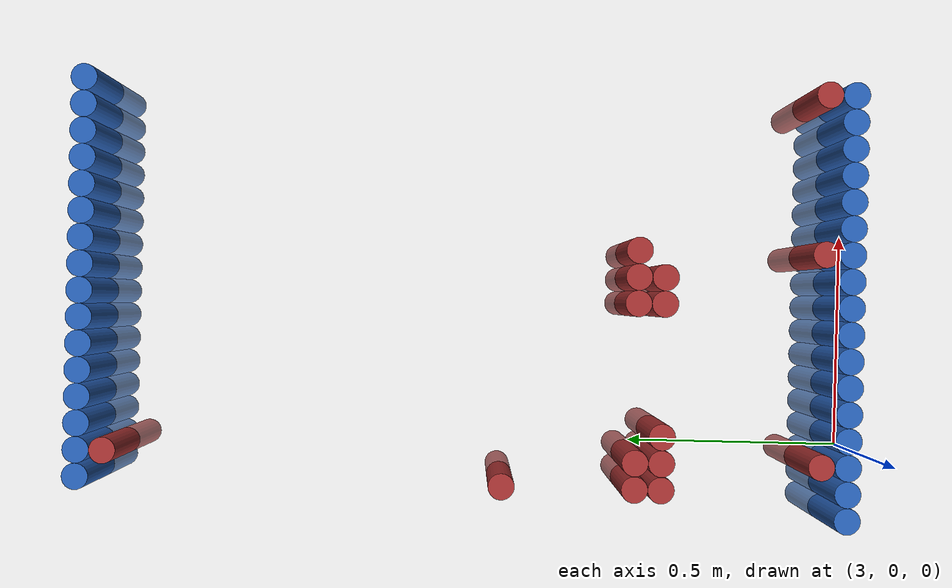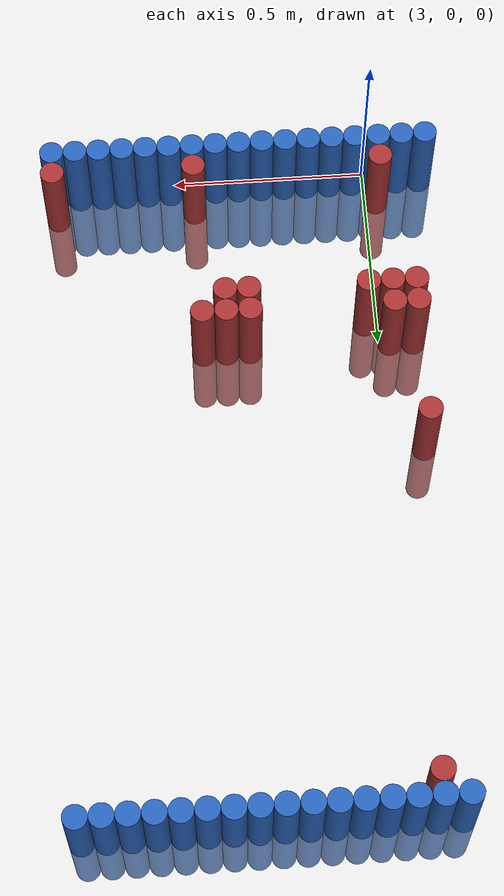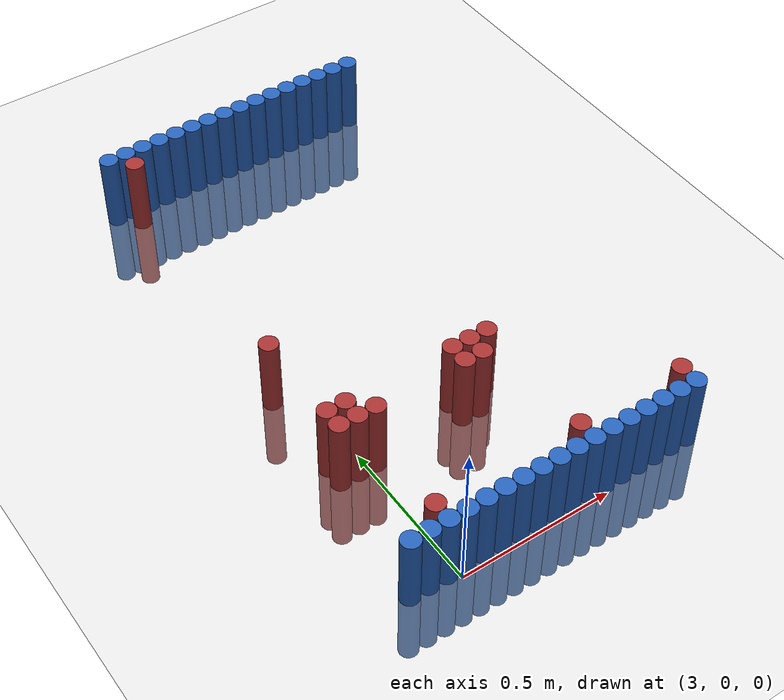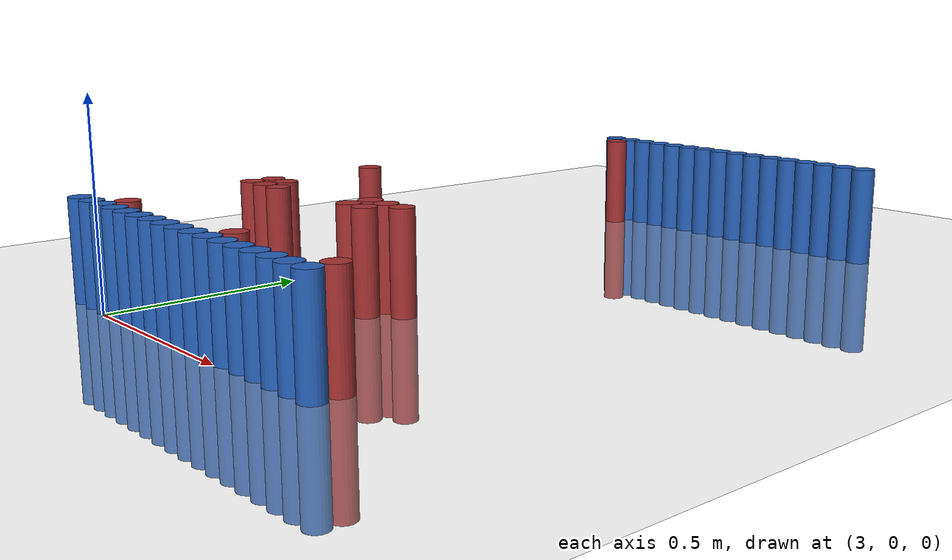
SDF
<sdf version="1.6">
 <world name="default">
  <model name="ground_plane">
   <static>1</static>
   <link name="link">
    <collision name="collision">
     <geometry><plane><normal>0 0 1</normal><size>100 100</size></plane></geometry>
     <surface><friction><ode><mu>100</mu><mu2>50</mu2></ode></friction></surface>
    </collision>
    <visual name="visual">
     <cast_shadows>0</cast_shadows>
     <geometry><plane><normal>0 0 1</normal><size>100 100</size></plane></geometry>
     <material>
      <script><uri>file://media/materials/scripts/gazebo.material</uri><name>Gazebo/Grey</name></script>
     </material>
    </visual>
   </link>
  </model>
  <model name="unit_cylinder_109">
   <static>1</static>
   <pose>2.910000 1.770000 0.000000 0.000000 0.000000 0.000000</pose>
   <link name="link">
    <inertial>
     <mass>1</mass>
     <inertia><ixx>0.145833</ixx><ixy>0</ixy><ixz>0</ixz><iyy>0.145833</iyy><iyz>0</iyz><izz>0.125</izz></inertia>
    </inertial>
    <collision name="collision">
     <geometry><cylinder><radius>0.030000</radius><length>0.5</length></cylinder></geometry>
    </collision>
    <visual name="visual">
     <geometry><cylinder><radius>0.030000</radius><length>0.5</length></cylinder></geometry>
     <material>
      <ambient>0.152000 0.379000 0.720000 1</ambient>
      <diffuse>0.152000 0.379000 0.720000 1</diffuse>
     </material>
     <material>
      <script><name>Gazebo/Grey</name><uri>file://media/materials/scripts/gazebo.material</uri></script>
     </material>
    </visual>
   </link>
  </model>
  <model name="unit_cylinder_110">
   <static>1</static>
   <pose>2.970000 1.770000 0.000000 0.000000 0.000000 0.000000</pose>
   <link name="link">
    <inertial>
     <mass>1</mass>
     <inertia><ixx>0.145833</ixx><ixy>0</ixy><ixz>0</ixz><iyy>0.145833</iyy><iyz>0</iyz><izz>0.125</izz></inertia>
    </inertial>
    <collision name="collision">
     <geometry><cylinder><radius>0.030000</radius><length>0.5</length></cylinder></geometry>
    </collision>
    <visual name="visual">
     <geometry><cylinder><radius>0.030000</radius><length>0.5</length></cylinder></geometry>
     <material>
      <ambient>0.152000 0.379000 0.720000 1</ambient>
      <diffuse>0.152000 0.379000 0.720000 1</diffuse>
     </material>
     <material>
      <script><name>Gazebo/Grey</name><uri>file://media/materials/scripts/gazebo.material</uri></script>
     </material>
    </visual>
   </link>
  </model>
  <model name="unit_cylinder_111">
   <static>1</static>
   <pose>3.030000 1.770000 0.000000 0.000000 0.000000 0.000000</pose>
   <link name="link">
    <inertial>
     <mass>1</mass>
     <inertia><ixx>0.145833</ixx><ixy>0</ixy><ixz>0</ixz><iyy>0.145833</iyy><iyz>0</iyz><izz>0.125</izz></inertia>
    </inertial>
    <collision name="collision">
     <geometry><cylinder><radius>0.030000</radius><length>0.5</length></cylinder></geometry>
    </collision>
    <visual name="visual">
     <geometry><cylinder><radius>0.030000</radius><length>0.5</length></cylinder></geometry>
     <material>
      <ambient>0.152000 0.379000 0.720000 1</ambient>
      <diffuse>0.152000 0.379000 0.720000 1</diffuse>
     </material>
     <material>
      <script><name>Gazebo/Grey</name><uri>file://media/materials/scripts/gazebo.material</uri></script>
     </material>
    </visual>
   </link>
  </model>
  <model name="unit_cylinder_112">
   <static>1</static>
   <pose>3.090000 1.770000 0.000000 0.000000 0.000000 0.000000</pose>
   <link name="link">
    <inertial>
     <mass>1</mass>
     <inertia><ixx>0.145833</ixx><ixy>0</ixy><ixz>0</ixz><iyy>0.145833</iyy><iyz>0</iyz><izz>0.125</izz></inertia>
    </inertial>
    <collision name="collision">
     <geometry><cylinder><radius>0.030000</radius><length>0.5</length></cylinder></geometry>
    </collision>
    <visual name="visual">
     <geometry><cylinder><radius>0.030000</radius><length>0.5</length></cylinder></geometry>
     <material>
      <ambient>0.152000 0.379000 0.720000 1</ambient>
      <diffuse>0.152000 0.379000 0.720000 1</diffuse>
     </material>
     <material>
      <script><name>Gazebo/Grey</name><uri>file://media/materials/scripts/gazebo.material</uri></script>
     </material>
    </visual>
   </link>
  </model>
  <model name="unit_cylinder_113">
   <static>1</static>
   <pose>3.150000 1.770000 0.000000 0.000000 0.000000 0.000000</pose>
   <link name="link">
    <inertial>
     <mass>1</mass>
     <inertia><ixx>0.145833</ixx><ixy>0</ixy><ixz>0</ixz><iyy>0.145833</iyy><iyz>0</iyz><izz>0.125</izz></inertia>
    </inertial>
    <collision name="collision">
     <geometry><cylinder><radius>0.030000</radius><length>0.5</length></cylinder></geometry>
    </collision>
    <visual name="visual">
     <geometry><cylinder><radius>0.030000</radius><length>0.5</length></cylinder></geometry>
     <material>
      <ambient>0.152000 0.379000 0.720000 1</ambient>
      <diffuse>0.152000 0.379000 0.720000 1</diffuse>
     </material>
     <material>
      <script><name>Gazebo/Grey</name><uri>file://media/materials/scripts/gazebo.material</uri></script>
     </material>
    </visual>
   </link>
  </model>
  <model name="unit_cylinder_114">
   <static>1</static>
   <pose>3.210000 1.770000 0.000000 0.000000 0.000000 0.000000</pose>
   <link name="link">
    <inertial>
     <mass>1</mass>
     <inertia><ixx>0.145833</ixx><ixy>0</ixy><ixz>0</ixz><iyy>0.145833</iyy><iyz>0</iyz><izz>0.125</izz></inertia>
    </inertial>
    <collision name="collision">
     <geometry><cylinder><radius>0.030000</radius><length>0.5</length></cylinder></geometry>
    </collision>
    <visual name="visual">
     <geometry><cylinder><radius>0.030000</radius><length>0.5</length></cylinder></geometry>
     <material>
      <ambient>0.152000 0.379000 0.720000 1</ambient>
      <diffuse>0.152000 0.379000 0.720000 1</diffuse>
     </material>
     <material>
      <script><name>Gazebo/Grey</name><uri>file://media/materials/scripts/gazebo.material</uri></script>
     </material>
    </visual>
   </link>
  </model>
  <model name="unit_cylinder_115">
   <static>1</static>
   <pose>3.270000 1.770000 0.000000 0.000000 0.000000 0.000000</pose>
   <link name="link">
    <inertial>
     <mass>1</mass>
     <inertia><ixx>0.145833</ixx><ixy>0</ixy><ixz>0</ixz><iyy>0.145833</iyy><iyz>0</iyz><izz>0.125</izz></inertia>
    </inertial>
    <collision name="collision">
     <geometry><cylinder><radius>0.030000</radius><length>0.5</length></cylinder></geometry>
    </collision>
    <visual name="visual">
     <geometry><cylinder><radius>0.030000</radius><length>0.5</length></cylinder></geometry>
     <material>
      <ambient>0.152000 0.379000 0.720000 1</ambient>
      <diffuse>0.152000 0.379000 0.720000 1</diffuse>
     </material>
     <material>
      <script><name>Gazebo/Grey</name><uri>file://media/materials/scripts/gazebo.material</uri></script>
     </material>
    </visual>
   </link>
  </model>
  <model name="unit_cylinder_116">
   <static>1</static>
   <pose>3.330000 1.770000 0.000000 0.000000 0.000000 0.000000</pose>
   <link name="link">
    <inertial>
     <mass>1</mass>
     <inertia><ixx>0.145833</ixx><ixy>0</ixy><ixz>0</ixz><iyy>0.145833</iyy><iyz>0</iyz><izz>0.125</izz></inertia>
    </inertial>
    <collision name="collision">
     <geometry><cylinder><radius>0.030000</radius><length>0.5</length></cylinder></geometry>
    </collision>
    <visual name="visual">
     <geometry><cylinder><radius>0.030000</radius><length>0.5</length></cylinder></geometry>
     <material>
      <ambient>0.152000 0.379000 0.720000 1</ambient>
      <diffuse>0.152000 0.379000 0.720000 1</diffuse>
     </material>
     <material>
      <script><name>Gazebo/Grey</name><uri>file://media/materials/scripts/gazebo.material</uri></script>
     </material>
    </visual>
   </link>
  </model>
  <model name="unit_cylinder_117">
   <static>1</static>
   <pose>3.390000 1.770000 0.000000 0.000000 0.000000 0.000000</pose>
   <link name="link">
    <inertial>
     <mass>1</mass>
     <inertia><ixx>0.145833</ixx><ixy>0</ixy><ixz>0</ixz><iyy>0.145833</iyy><iyz>0</iyz><izz>0.125</izz></inertia>
    </inertial>
    <collision name="collision">
     <geometry><cylinder><radius>0.030000</radius><length>0.5</length></cylinder></geometry>
    </collision>
    <visual name="visual">
     <geometry><cylinder><radius>0.030000</radius><length>0.5</length></cylinder></geometry>
     <material>
      <ambient>0.152000 0.379000 0.720000 1</ambient>
      <diffuse>0.152000 0.379000 0.720000 1</diffuse>
     </material>
     <material>
      <script><name>Gazebo/Grey</name><uri>file://media/materials/scripts/gazebo.material</uri></script>
     </material>
    </visual>
   </link>
  </model>
  <model name="unit_cylinder_118">
   <static>1</static>
   <pose>3.450000 1.770000 0.000000 0.000000 0.000000 0.000000</pose>
   <link name="link">
    <inertial>
     <mass>1</mass>
     <inertia><ixx>0.145833</ixx><ixy>0</ixy><ixz>0</ixz><iyy>0.145833</iyy><iyz>0</iyz><izz>0.125</izz></inertia>
    </inertial>
    <collision name="collision">
     <geometry><cylinder><radius>0.030000</radius><length>0.5</length></cylinder></geometry>
    </collision>
    <visual name="visual">
     <geometry><cylinder><radius>0.030000</radius><length>0.5</length></cylinder></geometry>
     <material>
      <ambient>0.152000 0.379000 0.720000 1</ambient>
      <diffuse>0.152000 0.379000 0.720000 1</diffuse>
     </material>
     <material>
      <script><name>Gazebo/Grey</name><uri>file://media/materials/scripts/gazebo.material</uri></script>
     </material>
    </visual>
   </link>
  </model>
  <model name="unit_cylinder_119">
   <static>1</static>
   <pose>3.510000 1.770000 0.000000 0.000000 0.000000 0.000000</pose>
   <link name="link">
    <inertial>
     <mass>1</mass>
     <inertia><ixx>0.145833</ixx><ixy>0</ixy><ixz>0</ixz><iyy>0.145833</iyy><iyz>0</iyz><izz>0.125</izz></inertia>
    </inertial>
    <collision name="collision">
     <geometry><cylinder><radius>0.030000</radius><length>0.5</length></cylinder></geometry>
    </collision>
    <visual name="visual">
     <geometry><cylinder><radius>0.030000</radius><length>0.5</length></cylinder></geometry>
     <material>
      <ambient>0.152000 0.379000 0.720000 1</ambient>
      <diffuse>0.152000 0.379000 0.720000 1</diffuse>
     </material>
     <material>
      <script><name>Gazebo/Grey</name><uri>file://media/materials/scripts/gazebo.material</uri></script>
     </material>
    </visual>
   </link>
  </model>
  <model name="unit_cylinder_120">
   <static>1</static>
   <pose>3.570000 1.770000 0.000000 0.000000 0.000000 0.000000</pose>
   <link name="link">
    <inertial>
     <mass>1</mass>
     <inertia><ixx>0.145833</ixx><ixy>0</ixy><ixz>0</ixz><iyy>0.145833</iyy><iyz>0</iyz><izz>0.125</izz></inertia>
    </inertial>
    <collision name="collision">
     <geometry><cylinder><radius>0.030000</radius><length>0.5</length></cylinder></geometry>
    </collision>
    <visual name="visual">
     <geometry><cylinder><radius>0.030000</radius><length>0.5</length></cylinder></geometry>
     <material>
      <ambient>0.152000 0.379000 0.720000 1</ambient>
      <diffuse>0.152000 0.379000 0.720000 1</diffuse>
     </material>
     <material>
      <script><name>Gazebo/Grey</name><uri>file://media/materials/scripts/gazebo.material</uri></script>
     </material>
    </visual>
   </link>
  </model>
  <model name="unit_cylinder_121">
   <static>1</static>
   <pose>3.630000 1.770000 0.000000 0.000000 0.000000 0.000000</pose>
   <link name="link">
    <inertial>
     <mass>1</mass>
     <inertia><ixx>0.145833</ixx><ixy>0</ixy><ixz>0</ixz><iyy>0.145833</iyy><iyz>0</iyz><izz>0.125</izz></inertia>
    </inertial>
    <collision name="collision">
     <geometry><cylinder><radius>0.030000</radius><length>0.5</length></cylinder></geometry>
    </collision>
    <visual name="visual">
     <geometry><cylinder><radius>0.030000</radius><length>0.5</length></cylinder></geometry>
     <material>
      <ambient>0.152000 0.379000 0.720000 1</ambient>
      <diffuse>0.152000 0.379000 0.720000 1</diffuse>
     </material>
     <material>
      <script><name>Gazebo/Grey</name><uri>file://media/materials/scripts/gazebo.material</uri></script>
     </material>
    </visual>
   </link>
  </model>
  <model name="unit_cylinder_122">
   <static>1</static>
   <pose>3.690000 1.770000 0.000000 0.000000 0.000000 0.000000</pose>
   <link name="link">
    <inertial>
     <mass>1</mass>
     <inertia><ixx>0.145833</ixx><ixy>0</ixy><ixz>0</ixz><iyy>0.145833</iyy><iyz>0</iyz><izz>0.125</izz></inertia>
    </inertial>
    <collision name="collision">
     <geometry><cylinder><radius>0.030000</radius><length>0.5</length></cylinder></geometry>
    </collision>
    <visual name="visual">
     <geometry><cylinder><radius>0.030000</radius><length>0.5</length></cylinder></geometry>
     <material>
      <ambient>0.152000 0.379000 0.720000 1</ambient>
      <diffuse>0.152000 0.379000 0.720000 1</diffuse>
     </material>
     <material>
      <script><name>Gazebo/Grey</name><uri>file://media/materials/scripts/gazebo.material</uri></script>
     </material>
    </visual>
   </link>
  </model>
  <model name="unit_cylinder_123">
   <static>1</static>
   <pose>3.750000 1.770000 0.000000 0.000000 0.000000 0.000000</pose>
   <link name="link">
    <inertial>
     <mass>1</mass>
     <inertia><ixx>0.145833</ixx><ixy>0</ixy><ixz>0</ixz><iyy>0.145833</iyy><iyz>0</iyz><izz>0.125</izz></inertia>
    </inertial>
    <collision name="collision">
     <geometry><cylinder><radius>0.030000</radius><length>0.5</length></cylinder></geometry>
    </collision>
    <visual name="visual">
     <geometry><cylinder><radius>0.030000</radius><length>0.5</length></cylinder></geometry>
     <material>
      <ambient>0.152000 0.379000 0.720000 1</ambient>
      <diffuse>0.152000 0.379000 0.720000 1</diffuse>
     </material>
     <material>
      <script><name>Gazebo/Grey</name><uri>file://media/materials/scripts/gazebo.material</uri></script>
     </material>
    </visual>
   </link>
  </model>
  <model name="unit_cylinder_124">
   <static>1</static>
   <pose>3.810000 1.770000 0.000000 0.000000 0.000000 0.000000</pose>
   <link name="link">
    <inertial>
     <mass>1</mass>
     <inertia><ixx>0.145833</ixx><ixy>0</ixy><ixz>0</ixz><iyy>0.145833</iyy><iyz>0</iyz><izz>0.125</izz></inertia>
    </inertial>
    <collision name="collision">
     <geometry><cylinder><radius>0.030000</radius><length>0.5</length></cylinder></geometry>
    </collision>
    <visual name="visual">
     <geometry><cylinder><radius>0.030000</radius><length>0.5</length></cylinder></geometry>
     <material>
      <ambient>0.152000 0.379000 0.720000 1</ambient>
      <diffuse>0.152000 0.379000 0.720000 1</diffuse>
     </material>
     <material>
      <script><name>Gazebo/Grey</name><uri>file://media/materials/scripts/gazebo.material</uri></script>
     </material>
    </visual>
   </link>
  </model>
  <model name="unit_cylinder_125">
   <static>1</static>
   <pose>2.970000 1.710000 0.000000 0.000000 0.000000 0.000000</pose>
   <link name="link">
    <inertial>
     <mass>1</mass>
     <inertia><ixx>0.145833</ixx><ixy>0</ixy><ixz>0</ixz><iyy>0.145833</iyy><iyz>0</iyz><izz>0.125</izz></inertia>
    </inertial>
    <collision name="collision">
     <geometry><cylinder><radius>0.030000</radius><length>0.5</length></cylinder></geometry>
    </collision>
    <visual name="visual">
     <geometry><cylinder><radius>0.030000</radius><length>0.5</length></cylinder></geometry>
     <material>
      <ambient>0.648000 0.192000 0.192000 1</ambient>
      <diffuse>0.648000 0.192000 0.192000 1</diffuse>
     </material>
     <material>
      <script><name>Gazebo/Grey</name><uri>file://media/materials/scripts/gazebo.material</uri></script>
     </material>
    </visual>
   </link>
  </model>
  <model name="unit_cylinder_137">
   <static>1</static>
   <pose>2.910000 0.810000 0.000000 0.000000 0.000000 0.000000</pose>
   <link name="link">
    <inertial>
     <mass>1</mass>
     <inertia><ixx>0.145833</ixx><ixy>0</ixy><ixz>0</ixz><iyy>0.145833</iyy><iyz>0</iyz><izz>0.125</izz></inertia>
    </inertial>
    <collision name="collision">
     <geometry><cylinder><radius>0.030000</radius><length>0.5</length></cylinder></geometry>
    </collision>
    <visual name="visual">
     <geometry><cylinder><radius>0.030000</radius><length>0.5</length></cylinder></geometry>
     <material>
      <ambient>0.648000 0.192000 0.192000 1</ambient>
      <diffuse>0.648000 0.192000 0.192000 1</diffuse>
     </material>
     <material>
      <script><name>Gazebo/Grey</name><uri>file://media/materials/scripts/gazebo.material</uri></script>
     </material>
    </visual>
   </link>
  </model>
  <model name="unit_cylinder_138">
   <static>1</static>
   <pose>2.910000 0.510000 0.000000 0.000000 0.000000 0.000000</pose>
   <link name="link">
    <inertial>
     <mass>1</mass>
     <inertia><ixx>0.145833</ixx><ixy>0</ixy><ixz>0</ixz><iyy>0.145833</iyy><iyz>0</iyz><izz>0.125</izz></inertia>
    </inertial>
    <collision name="collision">
     <geometry><cylinder><radius>0.030000</radius><length>0.5</length></cylinder></geometry>
    </collision>
    <visual name="visual">
     <geometry><cylinder><radius>0.030000</radius><length>0.5</length></cylinder></geometry>
     <material>
      <ambient>0.648000 0.192000 0.192000 1</ambient>
      <diffuse>0.648000 0.192000 0.192000 1</diffuse>
     </material>
     <material>
      <script><name>Gazebo/Grey</name><uri>file://media/materials/scripts/gazebo.material</uri></script>
     </material>
    </visual>
   </link>
  </model>
  <model name="unit_cylinder_139">
   <static>1</static>
   <pose>2.970000 0.510000 0.000000 0.000000 0.000000 0.000000</pose>
   <link name="link">
    <inertial>
     <mass>1</mass>
     <inertia><ixx>0.145833</ixx><ixy>0</ixy><ixz>0</ixz><iyy>0.145833</iyy><iyz>0</iyz><izz>0.125</izz></inertia>
    </inertial>
    <collision name="collision">
     <geometry><cylinder><radius>0.030000</radius><length>0.5</length></cylinder></geometry>
    </collision>
    <visual name="visual">
     <geometry><cylinder><radius>0.030000</radius><length>0.5</length></cylinder></geometry>
     <material>
      <ambient>0.648000 0.192000 0.192000 1</ambient>
      <diffuse>0.648000 0.192000 0.192000 1</diffuse>
     </material>
     <material>
      <script><name>Gazebo/Grey</name><uri>file://media/materials/scripts/gazebo.material</uri></script>
     </material>
    </visual>
   </link>
  </model>
  <model name="unit_cylinder_140">
   <static>1</static>
   <pose>3.330000 0.510000 0.000000 0.000000 0.000000 0.000000</pose>
   <link name="link">
    <inertial>
     <mass>1</mass>
     <inertia><ixx>0.145833</ixx><ixy>0</ixy><ixz>0</ixz><iyy>0.145833</iyy><iyz>0</iyz><izz>0.125</izz></inertia>
    </inertial>
    <collision name="collision">
     <geometry><cylinder><radius>0.030000</radius><length>0.5</length></cylinder></geometry>
    </collision>
    <visual name="visual">
     <geometry><cylinder><radius>0.030000</radius><length>0.5</length></cylinder></geometry>
     <material>
      <ambient>0.648000 0.192000 0.192000 1</ambient>
      <diffuse>0.648000 0.192000 0.192000 1</diffuse>
     </material>
     <material>
      <script><name>Gazebo/Grey</name><uri>file://media/materials/scripts/gazebo.material</uri></script>
     </material>
    </visual>
   </link>
  </model>
  <model name="unit_cylinder_141">
   <static>1</static>
   <pose>3.390000 0.510000 0.000000 0.000000 0.000000 0.000000</pose>
   <link name="link">
    <inertial>
     <mass>1</mass>
     <inertia><ixx>0.145833</ixx><ixy>0</ixy><ixz>0</ixz><iyy>0.145833</iyy><iyz>0</iyz><izz>0.125</izz></inertia>
    </inertial>
    <collision name="collision">
     <geometry><cylinder><radius>0.030000</radius><length>0.5</length></cylinder></geometry>
    </collision>
    <visual name="visual">
     <geometry><cylinder><radius>0.030000</radius><length>0.5</length></cylinder></geometry>
     <material>
      <ambient>0.648000 0.192000 0.192000 1</ambient>
      <diffuse>0.648000 0.192000 0.192000 1</diffuse>
     </material>
     <material>
      <script><name>Gazebo/Grey</name><uri>file://media/materials/scripts/gazebo.material</uri></script>
     </material>
    </visual>
   </link>
  </model>
  <model name="unit_cylinder_142">
   <static>1</static>
   <pose>3.450000 0.510000 0.000000 0.000000 0.000000 0.000000</pose>
   <link name="link">
    <inertial>
     <mass>1</mass>
     <inertia><ixx>0.145833</ixx><ixy>0</ixy><ixz>0</ixz><iyy>0.145833</iyy><iyz>0</iyz><izz>0.125</izz></inertia>
    </inertial>
    <collision name="collision">
     <geometry><cylinder><radius>0.030000</radius><length>0.5</length></cylinder></geometry>
    </collision>
    <visual name="visual">
     <geometry><cylinder><radius>0.030000</radius><length>0.5</length></cylinder></geometry>
     <material>
      <ambient>0.648000 0.192000 0.192000 1</ambient>
      <diffuse>0.648000 0.192000 0.192000 1</diffuse>
     </material>
     <material>
      <script><name>Gazebo/Grey</name><uri>file://media/materials/scripts/gazebo.material</uri></script>
     </material>
    </visual>
   </link>
  </model>
  <model name="unit_cylinder_143">
   <static>1</static>
   <pose>2.910000 0.450000 0.000000 0.000000 0.000000 0.000000</pose>
   <link name="link">
    <inertial>
     <mass>1</mass>
     <inertia><ixx>0.145833</ixx><ixy>0</ixy><ixz>0</ixz><iyy>0.145833</iyy><iyz>0</iyz><izz>0.125</izz></inertia>
    </inertial>
    <collision name="collision">
     <geometry><cylinder><radius>0.030000</radius><length>0.5</length></cylinder></geometry>
    </collision>
    <visual name="visual">
     <geometry><cylinder><radius>0.030000</radius><length>0.5</length></cylinder></geometry>
     <material>
      <ambient>0.648000 0.192000 0.192000 1</ambient>
      <diffuse>0.648000 0.192000 0.192000 1</diffuse>
     </material>
     <material>
      <script><name>Gazebo/Grey</name><uri>file://media/materials/scripts/gazebo.material</uri></script>
     </material>
    </visual>
   </link>
  </model>
  <model name="unit_cylinder_144">
   <static>1</static>
   <pose>2.970000 0.450000 0.000000 0.000000 0.000000 0.000000</pose>
   <link name="link">
    <inertial>
     <mass>1</mass>
     <inertia><ixx>0.145833</ixx><ixy>0</ixy><ixz>0</ixz><iyy>0.145833</iyy><iyz>0</iyz><izz>0.125</izz></inertia>
    </inertial>
    <collision name="collision">
     <geometry><cylinder><radius>0.030000</radius><length>0.5</length></cylinder></geometry>
    </collision>
    <visual name="visual">
     <geometry><cylinder><radius>0.030000</radius><length>0.5</length></cylinder></geometry>
     <material>
      <ambient>0.648000 0.192000 0.192000 1</ambient>
      <diffuse>0.648000 0.192000 0.192000 1</diffuse>
     </material>
     <material>
      <script><name>Gazebo/Grey</name><uri>file://media/materials/scripts/gazebo.material</uri></script>
     </material>
    </visual>
   </link>
  </model>
  <model name="unit_cylinder_145">
   <static>1</static>
   <pose>3.030000 0.450000 0.000000 0.000000 0.000000 0.000000</pose>
   <link name="link">
    <inertial>
     <mass>1</mass>
     <inertia><ixx>0.145833</ixx><ixy>0</ixy><ixz>0</ixz><iyy>0.145833</iyy><iyz>0</iyz><izz>0.125</izz></inertia>
    </inertial>
    <collision name="collision">
     <geometry><cylinder><radius>0.030000</radius><length>0.5</length></cylinder></geometry>
    </collision>
    <visual name="visual">
     <geometry><cylinder><radius>0.030000</radius><length>0.5</length></cylinder></geometry>
     <material>
      <ambient>0.648000 0.192000 0.192000 1</ambient>
      <diffuse>0.648000 0.192000 0.192000 1</diffuse>
     </material>
     <material>
      <script><name>Gazebo/Grey</name><uri>file://media/materials/scripts/gazebo.material</uri></script>
     </material>
    </visual>
   </link>
  </model>
  <model name="unit_cylinder_146">
   <static>1</static>
   <pose>3.330000 0.450000 0.000000 0.000000 0.000000 0.000000</pose>
   <link name="link">
    <inertial>
     <mass>1</mass>
     <inertia><ixx>0.145833</ixx><ixy>0</ixy><ixz>0</ixz><iyy>0.145833</iyy><iyz>0</iyz><izz>0.125</izz></inertia>
    </inertial>
    <collision name="collision">
     <geometry><cylinder><radius>0.030000</radius><length>0.5</length></cylinder></geometry>
    </collision>
    <visual name="visual">
     <geometry><cylinder><radius>0.030000</radius><length>0.5</length></cylinder></geometry>
     <material>
      <ambient>0.648000 0.192000 0.192000 1</ambient>
      <diffuse>0.648000 0.192000 0.192000 1</diffuse>
     </material>
     <material>
      <script><name>Gazebo/Grey</name><uri>file://media/materials/scripts/gazebo.material</uri></script>
     </material>
    </visual>
   </link>
  </model>
  <model name="unit_cylinder_147">
   <static>1</static>
   <pose>3.390000 0.450000 0.000000 0.000000 0.000000 0.000000</pose>
   <link name="link">
    <inertial>
     <mass>1</mass>
     <inertia><ixx>0.145833</ixx><ixy>0</ixy><ixz>0</ixz><iyy>0.145833</iyy><iyz>0</iyz><izz>0.125</izz></inertia>
    </inertial>
    <collision name="collision">
     <geometry><cylinder><radius>0.030000</radius><length>0.5</length></cylinder></geometry>
    </collision>
    <visual name="visual">
     <geometry><cylinder><radius>0.030000</radius><length>0.5</length></cylinder></geometry>
     <material>
      <ambient>0.648000 0.192000 0.192000 1</ambient>
      <diffuse>0.648000 0.192000 0.192000 1</diffuse>
     </material>
     <material>
      <script><name>Gazebo/Grey</name><uri>file://media/materials/scripts/gazebo.material</uri></script>
     </material>
    </visual>
   </link>
  </model>
  <model name="unit_cylinder_158">
   <static>1</static>
   <pose>2.970000 0.090000 0.000000 0.000000 0.000000 0.000000</pose>
   <link name="link">
    <inertial>
     <mass>1</mass>
     <inertia><ixx>0.145833</ixx><ixy>0</ixy><ixz>0</ixz><iyy>0.145833</iyy><iyz>0</iyz><izz>0.125</izz></inertia>
    </inertial>
    <collision name="collision">
     <geometry><cylinder><radius>0.030000</radius><length>0.5</length></cylinder></geometry>
    </collision>
    <visual name="visual">
     <geometry><cylinder><radius>0.030000</radius><length>0.5</length></cylinder></geometry>
     <material>
      <ambient>0.648000 0.192000 0.192000 1</ambient>
      <diffuse>0.648000 0.192000 0.192000 1</diffuse>
     </material>
     <material>
      <script><name>Gazebo/Grey</name><uri>file://media/materials/scripts/gazebo.material</uri></script>
     </material>
    </visual>
   </link>
  </model>
  <model name="unit_cylinder_159">
   <static>1</static>
   <pose>3.450000 0.090000 0.000000 0.000000 0.000000 0.000000</pose>
   <link name="link">
    <inertial>
     <mass>1</mass>
     <inertia><ixx>0.145833</ixx><ixy>0</ixy><ixz>0</ixz><iyy>0.145833</iyy><iyz>0</iyz><izz>0.125</izz></inertia>
    </inertial>
    <collision name="collision">
     <geometry><cylinder><radius>0.030000</radius><length>0.5</length></cylinder></geometry>
    </collision>
    <visual name="visual">
     <geometry><cylinder><radius>0.030000</radius><length>0.5</length></cylinder></geometry>
     <material>
      <ambient>0.648000 0.192000 0.192000 1</ambient>
      <diffuse>0.648000 0.192000 0.192000 1</diffuse>
     </material>
     <material>
      <script><name>Gazebo/Grey</name><uri>file://media/materials/scripts/gazebo.material</uri></script>
     </material>
    </visual>
   </link>
  </model>
  <model name="unit_cylinder_160">
   <static>1</static>
   <pose>3.810000 0.090000 0.000000 0.000000 0.000000 0.000000</pose>
   <link name="link">
    <inertial>
     <mass>1</mass>
     <inertia><ixx>0.145833</ixx><ixy>0</ixy><ixz>0</ixz><iyy>0.145833</iyy><iyz>0</iyz><izz>0.125</izz></inertia>
    </inertial>
    <collision name="collision">
     <geometry><cylinder><radius>0.030000</radius><length>0.5</length></cylinder></geometry>
    </collision>
    <visual name="visual">
     <geometry><cylinder><radius>0.030000</radius><length>0.5</length></cylinder></geometry>
     <material>
      <ambient>0.648000 0.192000 0.192000 1</ambient>
      <diffuse>0.648000 0.192000 0.192000 1</diffuse>
     </material>
     <material>
      <script><name>Gazebo/Grey</name><uri>file://media/materials/scripts/gazebo.material</uri></script>
     </material>
    </visual>
   </link>
  </model>
  <model name="unit_cylinder_174">
   <static>1</static>
   <pose>2.850000 0.030000 0.000000 0.000000 0.000000 0.000000</pose>
   <link name="link">
    <inertial>
     <mass>1</mass>
     <inertia><ixx>0.145833</ixx><ixy>0</ixy><ixz>0</ixz><iyy>0.145833</iyy><iyz>0</iyz><izz>0.125</izz></inertia>
    </inertial>
    <collision name="collision">
     <geometry><cylinder><radius>0.030000</radius><length>0.5</length></cylinder></geometry>
    </collision>
    <visual name="visual">
     <geometry><cylinder><radius>0.030000</radius><length>0.5</length></cylinder></geometry>
     <material>
      <ambient>0.152000 0.379000 0.720000 1</ambient>
      <diffuse>0.152000 0.379000 0.720000 1</diffuse>
     </material>
     <material>
      <script><name>Gazebo/Grey</name><uri>file://media/materials/scripts/gazebo.material</uri></script>
     </material>
    </visual>
   </link>
  </model>
  <model name="unit_cylinder_175">
   <static>1</static>
   <pose>2.910000 0.030000 0.000000 0.000000 0.000000 0.000000</pose>
   <link name="link">
    <inertial>
     <mass>1</mass>
     <inertia><ixx>0.145833</ixx><ixy>0</ixy><ixz>0</ixz><iyy>0.145833</iyy><iyz>0</iyz><izz>0.125</izz></inertia>
    </inertial>
    <collision name="collision">
     <geometry><cylinder><radius>0.030000</radius><length>0.5</length></cylinder></geometry>
    </collision>
    <visual name="visual">
     <geometry><cylinder><radius>0.030000</radius><length>0.5</length></cylinder></geometry>
     <material>
      <ambient>0.152000 0.379000 0.720000 1</ambient>
      <diffuse>0.152000 0.379000 0.720000 1</diffuse>
     </material>
     <material>
      <script><name>Gazebo/Grey</name><uri>file://media/materials/scripts/gazebo.material</uri></script>
     </material>
    </visual>
   </link>
  </model>
  <model name="unit_cylinder_176">
   <static>1</static>
   <pose>2.970000 0.030000 0.000000 0.000000 0.000000 0.000000</pose>
   <link name="link">
    <inertial>
     <mass>1</mass>
     <inertia><ixx>0.145833</ixx><ixy>0</ixy><ixz>0</ixz><iyy>0.145833</iyy><iyz>0</iyz><izz>0.125</izz></inertia>
    </inertial>
    <collision name="collision">
     <geometry><cylinder><radius>0.030000</radius><length>0.5</length></cylinder></geometry>
    </collision>
    <visual name="visual">
     <geometry><cylinder><radius>0.030000</radius><length>0.5</length></cylinder></geometry>
     <material>
      <ambient>0.152000 0.379000 0.720000 1</ambient>
      <diffuse>0.152000 0.379000 0.720000 1</diffuse>
     </material>
     <material>
      <script><name>Gazebo/Grey</name><uri>file://media/materials/scripts/gazebo.material</uri></script>
     </material>
    </visual>
   </link>
  </model>
  <model name="unit_cylinder_177">
   <static>1</static>
   <pose>3.030000 0.030000 0.000000 0.000000 0.000000 0.000000</pose>
   <link name="link">
    <inertial>
     <mass>1</mass>
     <inertia><ixx>0.145833</ixx><ixy>0</ixy><ixz>0</ixz><iyy>0.145833</iyy><iyz>0</iyz><izz>0.125</izz></inertia>
    </inertial>
    <collision name="collision">
     <geometry><cylinder><radius>0.030000</radius><length>0.5</length></cylinder></geometry>
    </collision>
    <visual name="visual">
     <geometry><cylinder><radius>0.030000</radius><length>0.5</length></cylinder></geometry>
     <material>
      <ambient>0.152000 0.379000 0.720000 1</ambient>
      <diffuse>0.152000 0.379000 0.720000 1</diffuse>
     </material>
     <material>
      <script><name>Gazebo/Grey</name><uri>file://media/materials/scripts/gazebo.material</uri></script>
     </material>
    </visual>
   </link>
  </model>
  <model name="unit_cylinder_178">
   <static>1</static>
   <pose>3.090000 0.030000 0.000000 0.000000 0.000000 0.000000</pose>
   <link name="link">
    <inertial>
     <mass>1</mass>
     <inertia><ixx>0.145833</ixx><ixy>0</ixy><ixz>0</ixz><iyy>0.145833</iyy><iyz>0</iyz><izz>0.125</izz></inertia>
    </inertial>
    <collision name="collision">
     <geometry><cylinder><radius>0.030000</radius><length>0.5</length></cylinder></geometry>
    </collision>
    <visual name="visual">
     <geometry><cylinder><radius>0.030000</radius><length>0.5</length></cylinder></geometry>
     <material>
      <ambient>0.152000 0.379000 0.720000 1</ambient>
      <diffuse>0.152000 0.379000 0.720000 1</diffuse>
     </material>
     <material>
      <script><name>Gazebo/Grey</name><uri>file://media/materials/scripts/gazebo.material</uri></script>
     </material>
    </visual>
   </link>
  </model>
  <model name="unit_cylinder_179">
   <static>1</static>
   <pose>3.150000 0.030000 0.000000 0.000000 0.000000 0.000000</pose>
   <link name="link">
    <inertial>
     <mass>1</mass>
     <inertia><ixx>0.145833</ixx><ixy>0</ixy><ixz>0</ixz><iyy>0.145833</iyy><iyz>0</iyz><izz>0.125</izz></inertia>
    </inertial>
    <collision name="collision">
     <geometry><cylinder><radius>0.030000</radius><length>0.5</length></cylinder></geometry>
    </collision>
    <visual name="visual">
     <geometry><cylinder><radius>0.030000</radius><length>0.5</length></cylinder></geometry>
     <material>
      <ambient>0.152000 0.379000 0.720000 1</ambient>
      <diffuse>0.152000 0.379000 0.720000 1</diffuse>
     </material>
     <material>
      <script><name>Gazebo/Grey</name><uri>file://media/materials/scripts/gazebo.material</uri></script>
     </material>
    </visual>
   </link>
  </model>
  <model name="unit_cylinder_180">
   <static>1</static>
   <pose>3.210000 0.030000 0.000000 0.000000 0.000000 0.000000</pose>
   <link name="link">
    <inertial>
     <mass>1</mass>
     <inertia><ixx>0.145833</ixx><ixy>0</ixy><ixz>0</ixz><iyy>0.145833</iyy><iyz>0</iyz><izz>0.125</izz></inertia>
    </inertial>
    <collision name="collision">
     <geometry><cylinder><radius>0.030000</radius><length>0.5</length></cylinder></geometry>
    </collision>
    <visual name="visual">
     <geometry><cylinder><radius>0.030000</radius><length>0.5</length></cylinder></geometry>
     <material>
      <ambient>0.152000 0.379000 0.720000 1</ambient>
      <diffuse>0.152000 0.379000 0.720000 1</diffuse>
     </material>
     <material>
      <script><name>Gazebo/Grey</name><uri>file://media/materials/scripts/gazebo.material</uri></script>
     </material>
    </visual>
   </link>
  </model>
  <model name="unit_cylinder_181">
   <static>1</static>
   <pose>3.270000 0.030000 0.000000 0.000000 0.000000 0.000000</pose>
   <link name="link">
    <inertial>
     <mass>1</mass>
     <inertia><ixx>0.145833</ixx><ixy>0</ixy><ixz>0</ixz><iyy>0.145833</iyy><iyz>0</iyz><izz>0.125</izz></inertia>
    </inertial>
    <collision name="collision">
     <geometry><cylinder><radius>0.030000</radius><length>0.5</length></cylinder></geometry>
    </collision>
    <visual name="visual">
     <geometry><cylinder><radius>0.030000</radius><length>0.5</length></cylinder></geometry>
     <material>
      <ambient>0.152000 0.379000 0.720000 1</ambient>
      <diffuse>0.152000 0.379000 0.720000 1</diffuse>
     </material>
     <material>
      <script><name>Gazebo/Grey</name><uri>file://media/materials/scripts/gazebo.material</uri></script>
     </material>
    </visual>
   </link>
  </model>
  <model name="unit_cylinder_182">
   <static>1</static>
   <pose>3.330000 0.030000 0.000000 0.000000 0.000000 0.000000</pose>
   <link name="link">
    <inertial>
     <mass>1</mass>
     <inertia><ixx>0.145833</ixx><ixy>0</ixy><ixz>0</ixz><iyy>0.145833</iyy><iyz>0</iyz><izz>0.125</izz></inertia>
    </inertial>
    <collision name="collision">
     <geometry><cylinder><radius>0.030000</radius><length>0.5</length></cylinder></geometry>
    </collision>
    <visual name="visual">
     <geometry><cylinder><radius>0.030000</radius><length>0.5</length></cylinder></geometry>
     <material>
      <ambient>0.152000 0.379000 0.720000 1</ambient>
      <diffuse>0.152000 0.379000 0.720000 1</diffuse>
     </material>
     <material>
      <script><name>Gazebo/Grey</name><uri>file://media/materials/scripts/gazebo.material</uri></script>
     </material>
    </visual>
   </link>
  </model>
  <model name="unit_cylinder_183">
   <static>1</static>
   <pose>3.390000 0.030000 0.000000 0.000000 0.000000 0.000000</pose>
   <link name="link">
    <inertial>
     <mass>1</mass>
     <inertia><ixx>0.145833</ixx><ixy>0</ixy><ixz>0</ixz><iyy>0.145833</iyy><iyz>0</iyz><izz>0.125</izz></inertia>
    </inertial>
    <collision name="collision">
     <geometry><cylinder><radius>0.030000</radius><length>0.5</length></cylinder></geometry>
    </collision>
    <visual name="visual">
     <geometry><cylinder><radius>0.030000</radius><length>0.5</length></cylinder></geometry>
     <material>
      <ambient>0.152000 0.379000 0.720000 1</ambient>
      <diffuse>0.152000 0.379000 0.720000 1</diffuse>
     </material>
     <material>
      <script><name>Gazebo/Grey</name><uri>file://media/materials/scripts/gazebo.material</uri></script>
     </material>
    </visual>
   </link>
  </model>
  <model name="unit_cylinder_184">
   <static>1</static>
   <pose>3.450000 0.030000 0.000000 0.000000 0.000000 0.000000</pose>
   <link name="link">
    <inertial>
     <mass>1</mass>
     <inertia><ixx>0.145833</ixx><ixy>0</ixy><ixz>0</ixz><iyy>0.145833</iyy><iyz>0</iyz><izz>0.125</izz></inertia>
    </inertial>
    <collision name="collision">
     <geometry><cylinder><radius>0.030000</radius><length>0.5</length></cylinder></geometry>
    </collision>
    <visual name="visual">
     <geometry><cylinder><radius>0.030000</radius><length>0.5</length></cylinder></geometry>
     <material>
      <ambient>0.152000 0.379000 0.720000 1</ambient>
      <diffuse>0.152000 0.379000 0.720000 1</diffuse>
     </material>
     <material>
      <script><name>Gazebo/Grey</name><uri>file://media/materials/scripts/gazebo.material</uri></script>
     </material>
    </visual>
   </link>
  </model>
  <model name="unit_cylinder_185">
   <static>1</static>
   <pose>3.510000 0.030000 0.000000 0.000000 0.000000 0.000000</pose>
   <link name="link">
    <inertial>
     <mass>1</mass>
     <inertia><ixx>0.145833</ixx><ixy>0</ixy><ixz>0</ixz><iyy>0.145833</iyy><iyz>0</iyz><izz>0.125</izz></inertia>
    </inertial>
    <collision name="collision">
     <geometry><cylinder><radius>0.030000</radius><length>0.5</length></cylinder></geometry>
    </collision>
    <visual name="visual">
     <geometry><cylinder><radius>0.030000</radius><length>0.5</length></cylinder></geometry>
     <material>
      <ambient>0.152000 0.379000 0.720000 1</ambient>
      <diffuse>0.152000 0.379000 0.720000 1</diffuse>
     </material>
     <material>
      <script><name>Gazebo/Grey</name><uri>file://media/materials/scripts/gazebo.material</uri></script>
     </material>
    </visual>
   </link>
  </model>
  <model name="unit_cylinder_186">
   <static>1</static>
   <pose>3.570000 0.030000 0.000000 0.000000 0.000000 0.000000</pose>
   <link name="link">
    <inertial>
     <mass>1</mass>
     <inertia><ixx>0.145833</ixx><ixy>0</ixy><ixz>0</ixz><iyy>0.145833</iyy><iyz>0</iyz><izz>0.125</izz></inertia>
    </inertial>
    <collision name="collision">
     <geometry><cylinder><radius>0.030000</radius><length>0.5</length></cylinder></geometry>
    </collision>
    <visual name="visual">
     <geometry><cylinder><radius>0.030000</radius><length>0.5</length></cylinder></geometry>
     <material>
      <ambient>0.152000 0.379000 0.720000 1</ambient>
      <diffuse>0.152000 0.379000 0.720000 1</diffuse>
     </material>
     <material>
      <script><name>Gazebo/Grey</name><uri>file://media/materials/scripts/gazebo.material</uri></script>
     </material>
    </visual>
   </link>
  </model>
  <model name="unit_cylinder_187">
   <static>1</static>
   <pose>3.630000 0.030000 0.000000 0.000000 0.000000 0.000000</pose>
   <link name="link">
    <inertial>
     <mass>1</mass>
     <inertia><ixx>0.145833</ixx><ixy>0</ixy><ixz>0</ixz><iyy>0.145833</iyy><iyz>0</iyz><izz>0.125</izz></inertia>
    </inertial>
    <collision name="collision">
     <geometry><cylinder><radius>0.030000</radius><length>0.5</length></cylinder></geometry>
    </collision>
    <visual name="visual">
     <geometry><cylinder><radius>0.030000</radius><length>0.5</length></cylinder></geometry>
     <material>
      <ambient>0.152000 0.379000 0.720000 1</ambient>
      <diffuse>0.152000 0.379000 0.720000 1</diffuse>
     </material>
     <material>
      <script><name>Gazebo/Grey</name><uri>file://media/materials/scripts/gazebo.material</uri></script>
     </material>
    </visual>
   </link>
  </model>
  <model name="unit_cylinder_188">
   <static>1</static>
   <pose>3.690000 0.030000 0.000000 0.000000 0.000000 0.000000</pose>
   <link name="link">
    <inertial>
     <mass>1</mass>
     <inertia><ixx>0.145833</ixx><ixy>0</ixy><ixz>0</ixz><iyy>0.145833</iyy><iyz>0</iyz><izz>0.125</izz></inertia>
    </inertial>
    <collision name="collision">
     <geometry><cylinder><radius>0.030000</radius><length>0.5</length></cylinder></geometry>
    </collision>
    <visual name="visual">
     <geometry><cylinder><radius>0.030000</radius><length>0.5</length></cylinder></geometry>
     <material>
      <ambient>0.152000 0.379000 0.720000 1</ambient>
      <diffuse>0.152000 0.379000 0.720000 1</diffuse>
     </material>
     <material>
      <script><name>Gazebo/Grey</name><uri>file://media/materials/scripts/gazebo.material</uri></script>
     </material>
    </visual>
   </link>
  </model>
  <model name="unit_cylinder_189">
   <static>1</static>
   <pose>3.750000 0.030000 0.000000 0.000000 0.000000 0.000000</pose>
   <link name="link">
    <inertial>
     <mass>1</mass>
     <inertia><ixx>0.145833</ixx><ixy>0</ixy><ixz>0</ixz><iyy>0.145833</iyy><iyz>0</iyz><izz>0.125</izz></inertia>
    </inertial>
    <collision name="collision">
     <geometry><cylinder><radius>0.030000</radius><length>0.5</length></cylinder></geometry>
    </collision>
    <visual name="visual">
     <geometry><cylinder><radius>0.030000</radius><length>0.5</length></cylinder></geometry>
     <material>
      <ambient>0.152000 0.379000 0.720000 1</ambient>
      <diffuse>0.152000 0.379000 0.720000 1</diffuse>
     </material>
     <material>
      <script><name>Gazebo/Grey</name><uri>file://media/materials/scripts/gazebo.material</uri></script>
     </material>
    </visual>
   </link>
  </model>
  <model name="unit_cylinder_190">
   <static>1</static>
   <pose>3.810000 0.030000 0.000000 0.000000 0.000000 0.000000</pose>
   <link name="link">
    <inertial>
     <mass>1</mass>
     <inertia><ixx>0.145833</ixx><ixy>0</ixy><ixz>0</ixz><iyy>0.145833</iyy><iyz>0</iyz><izz>0.125</izz></inertia>
    </inertial>
    <collision name="collision">
     <geometry><cylinder><radius>0.030000</radius><length>0.5</length></cylinder></geometry>
    </collision>
    <visual name="visual">
     <geometry><cylinder><radius>0.030000</radius><length>0.5</length></cylinder></geometry>
     <material>
      <ambient>0.152000 0.379000 0.720000 1</ambient>
      <diffuse>0.152000 0.379000 0.720000 1</diffuse>
     </material>
     <material>
      <script><name>Gazebo/Grey</name><uri>file://media/materials/scripts/gazebo.material</uri></script>
     </material>
    </visual>
   </link>
  </model>
 </world>
</sdf>
